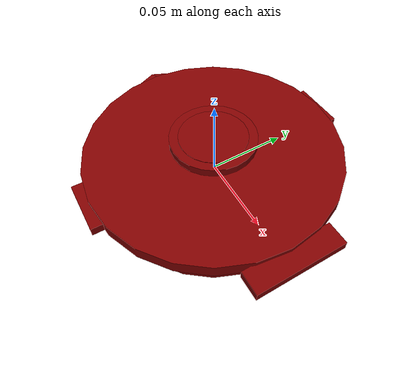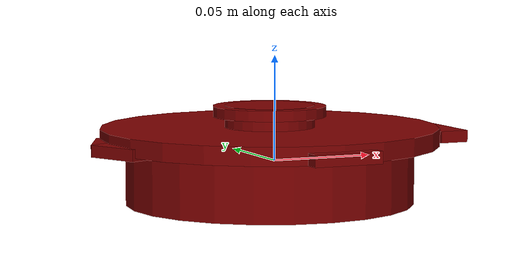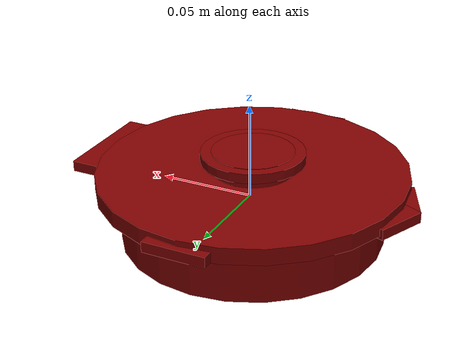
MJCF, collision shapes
<mujoco model="model">
  <option timestep="0.002" gravity="0.0 0.0 -9.81"/>
  <compiler angle="radian"/>
  <asset>
    <texture file="visuals/T_BC001.png" name="lid_material" type="2d"/>
    <material name="lid_material" rgba="1 1 1 1.0" texture="lid_material" shininess="0.4472135901451111" specular="0.3103448502657381"/>
    <mesh file="visuals/lid.obj" name="lid_vis"/>
  </asset>
  <default>
    <default class="visual">
      <geom conaffinity="0" contype="0" group="1" type="mesh"/>
    </default>
    <default class="collision">
      <geom group="0" rgba="0.5 0 0 0.5"/>
    </default>
    <default class="spawn">
      <geom group="0" rgba="1 1 1 0.5" contype="0" conaffinity="0"/>
      <site group="0" rgba="1 1 1 0.5"/>
    </default>
    <default class="region">
      <geom group="1" conaffinity="0" contype="0" rgba="0 1 0 0"/>
    </default>
  </default>
  <worldbody>
    <body>
      <body name="object">
        <geom mesh="lid_vis" type="mesh" solimp="0.998 0.998 0.001" solref="0.001 1" friction="0.95 0.3 0.1" class="visual" material="lid_material"/>
        <geom class="collision" type="cylinder" pos="-0.0022767619560481664 0.0007704792812118413 0.011889447212581394" size="0.08047248423099518 0.00426448555663228" quat="1.0 0.0 0.0 0.0" density="1000.0"/>
        <geom class="collision" type="cylinder" pos="-0.0022767619560481664 0.0007704792812118413 -0.006089447212581394" size="0.06847248423099518 0.0139448555663228" quat="1.0 0.0 0.0 0.0" density="1000.0"/>
        <geom class="collision" type="cylinder" pos="-0.0022767419560481665 0.0007704692812118405 0.017051587212581404" size="0.021449467167258263 0.009426616132259369" quat="1.0 0.0 0.0 0.0" density="1000.0"/>
        <geom class="collision" type="box" pos="0.08167954804395183 0.0001653592812118406 0.010466117212581394" size="0.0071110534481704235 0.028332218527793884 0.0028181890957057476" quat="1.0 0.0 0.0 0.0" density="1000.0"/>
        <geom class="collision" name="handle_main" type="cylinder" pos="-0.0022767419560481665 0.0007704692812118405 0.023753767212581406" size="0.026944704353809357 0.002491123741492629" quat="1.0 0.0 0.0 0.0" density="1000.0"/>
        <geom class="collision" type="box" pos="-0.0025479619560481656 -0.07967454071878816 0.010466117212581394" size="0.016500504687428474 0.0049792188219726086 0.0028181872330605984" quat="1.0 0.0 0.0 0.0" density="1000.0"/>
        <geom class="collision" type="box" pos="-0.0025479619560481656 0.07956678928121184 0.010466117212581394" size="0.016500504687428474 0.0049792188219726086 0.002818188164383173" quat="1.0 0.0 0.0 0.0" density="1000.0"/>
        <geom class="collision" type="box" pos="-0.07979020195604816 0.00937416928121184 0.009007897212581384" size="0.0071110534481704235 0.013324333354830742 0.0028181890957057476" quat="0.978147566318512 0.0 -0.0 -0.20791172981262207" density="1000.0"/>
        <geom class="collision" type="box" pos="-0.07958392195604816 -0.00860602071878816 0.009007897212581384" size="0.0071110534481704235 0.013324332423508167 0.0028181890957057476" quat="0.9762960076332092 0.0 0.0 0.2164396494626999" density="1000.0"/>
        <geom class="region" name="reg_main" density="0" type="box" pos="-0.0004588199999999987 2.9699999999979743e-06 0.002117869999999999" size="0.089582 0.08398349999999999 0.023162500000000003"/>
      </body>
    </body>
  </worldbody>
</mujoco>
